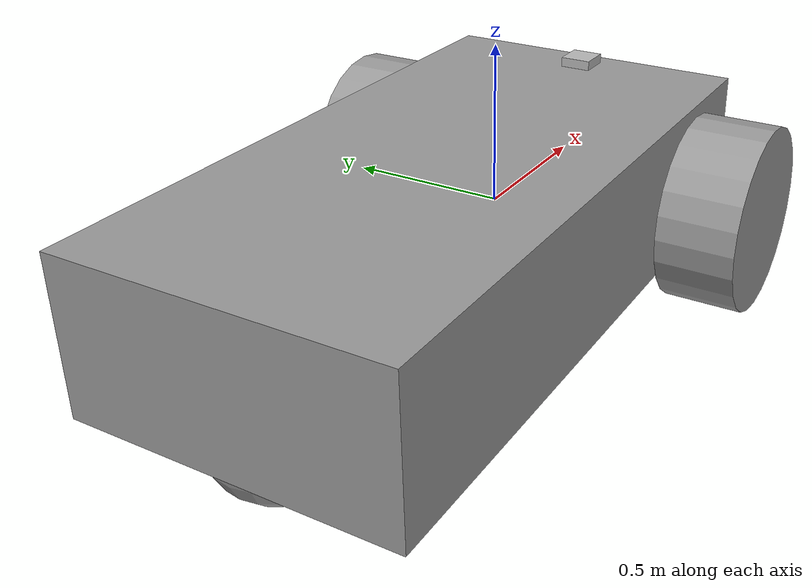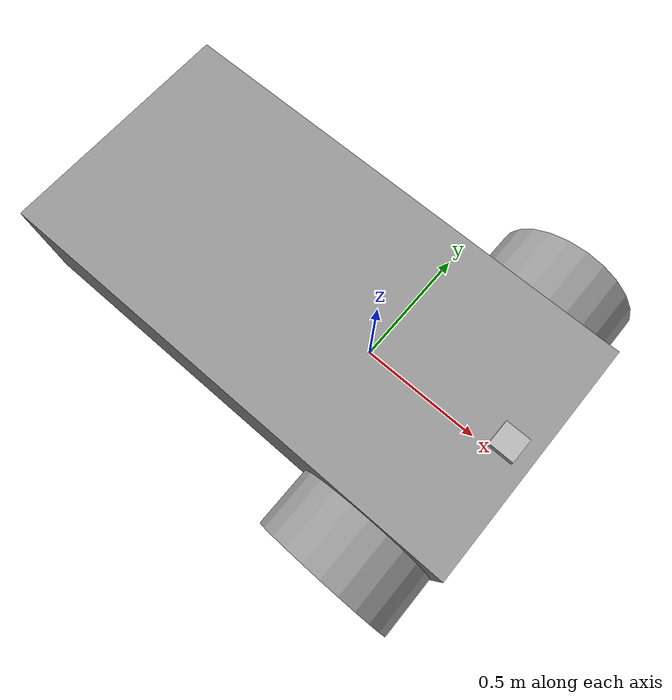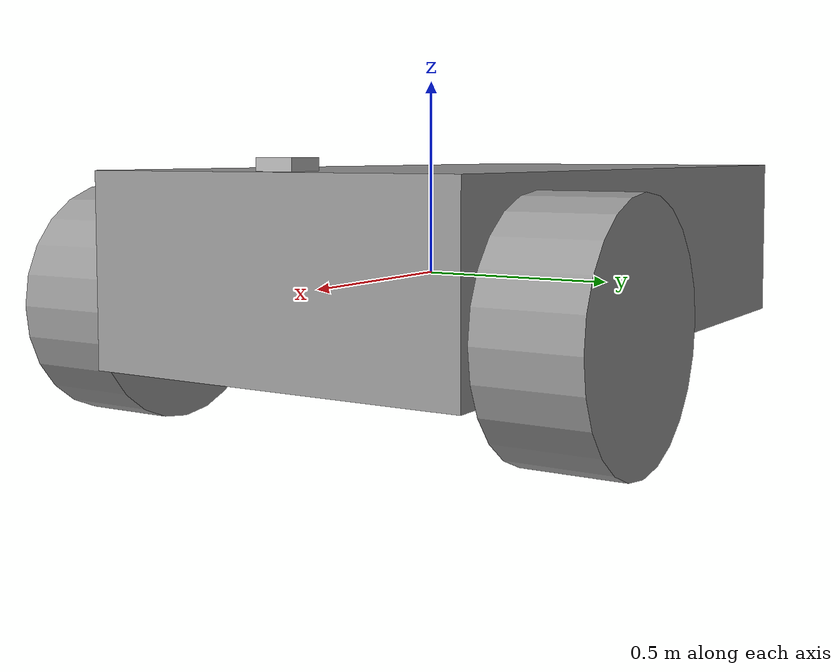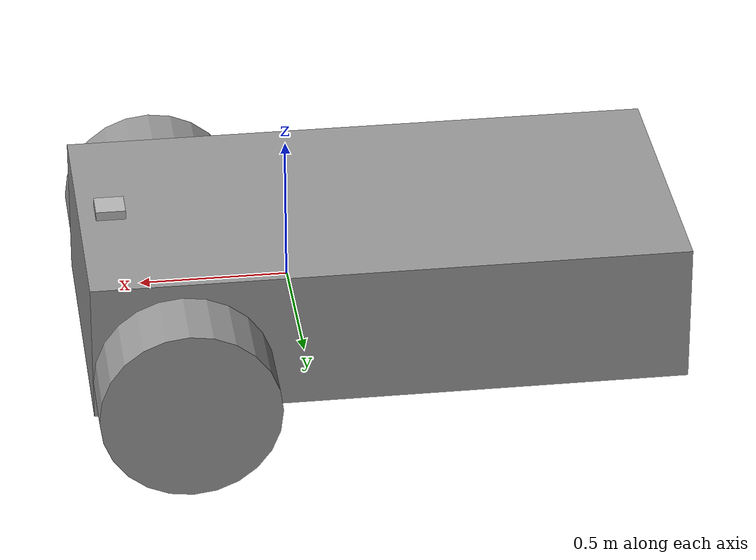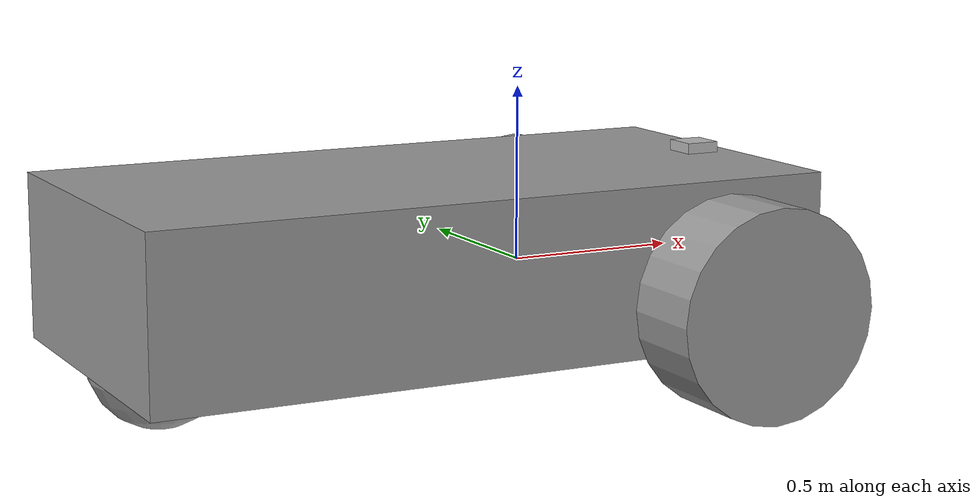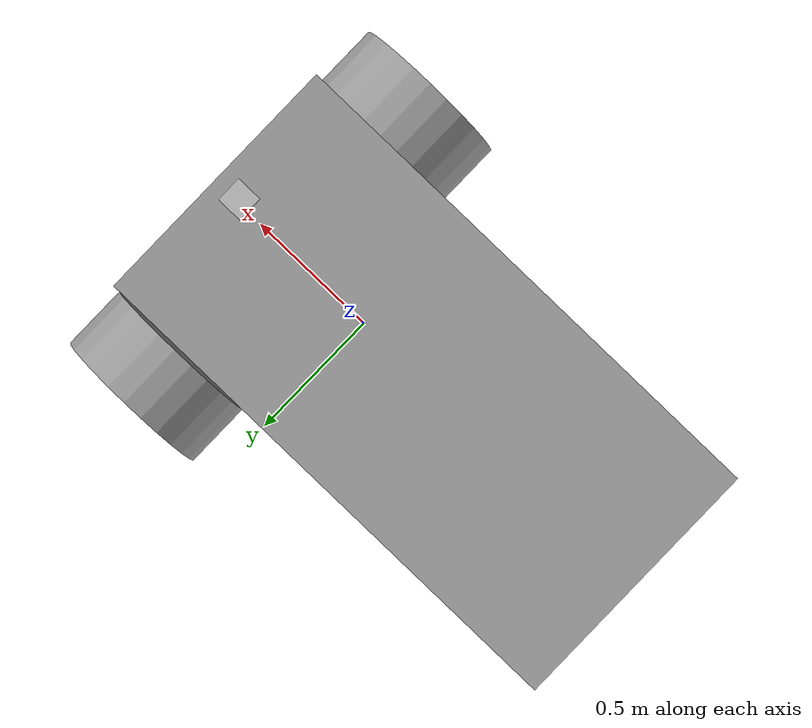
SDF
<?xml version='1.0'?>
<sdf version='1.6'>
  <model name='Assignement_2_Solution'>
    <link name='link_0'>
      <inertial>
        <mass>0.950561</mass>
        <inertia>
          <ixx>0.0972539</ixx>
          <ixy>0</ixy>
          <ixz>0</ixz>
          <iyy>0.332322</iyy>
          <iyz>0</iyz>
          <izz>0.393495</izz>
        </inertia>
        <pose frame=''>0 0 0 0 -0 0</pose>
      </inertial>
      <pose frame=''>-0.296974 -0.00093 0.03602 0 -0 0</pose>
      <gravity>1</gravity>
      <self_collide>0</self_collide>
      <kinematic>0</kinematic>
      <enable_wind>0</enable_wind>
      <visual name='visual'>
        <pose frame=''>0 0 0 0 -0 0</pose>
        <geometry>
          <box>
            <size>1.99187 1 0.477226</size>
          </box>
        </geometry>
        <material>
          <lighting>1</lighting>
          <script>
            <uri>file://media/materials/scripts/gazebo.material</uri>
            <name>Gazebo/Grey</name>
          </script>
          <shader type='vertex'>
            <normal_map>__default__</normal_map>
          </shader>
          <ambient>0.3 0.3 0.3 1</ambient>
          <diffuse>0.7 0.7 0.7 1</diffuse>
          <specular>0.01 0.01 0.01 1</specular>
          <emissive>0 0 0 1</emissive>
        </material>
        <transparency>0</transparency>
        <cast_shadows>1</cast_shadows>
      </visual>
      <collision name='collision'>
        <laser_retro>0</laser_retro>
        <max_contacts>10</max_contacts>
        <pose frame=''>0 0 0 0 -0 0</pose>
        <geometry>
          <box>
            <size>1.99187 1 0.477226</size>
          </box>
        </geometry>
        <surface>
          <friction>
            <ode>
              <mu>1</mu>
              <mu2>1</mu2>
              <fdir1>0 0 0</fdir1>
              <slip1>0</slip1>
              <slip2>0</slip2>
            </ode>
            <torsional>
              <coefficient>1</coefficient>
              <patch_radius>0</patch_radius>
              <surface_radius>0</surface_radius>
              <use_patch_radius>1</use_patch_radius>
              <ode>
                <slip>0</slip>
              </ode>
            </torsional>
          </friction>
          <bounce>
            <restitution_coefficient>0</restitution_coefficient>
            <threshold>1e+06</threshold>
          </bounce>
          <contact>
            <collide_without_contact>0</collide_without_contact>
            <collide_without_contact_bitmask>1</collide_without_contact_bitmask>
            <collide_bitmask>1</collide_bitmask>
            <ode>
              <soft_cfm>0</soft_cfm>
              <soft_erp>0.2</soft_erp>
              <kp>1e+13</kp>
              <kd>1</kd>
              <max_vel>0.01</max_vel>
              <min_depth>0</min_depth>
            </ode>
            <bullet>
              <split_impulse>1</split_impulse>
              <split_impulse_penetration_threshold>-0.01</split_impulse_penetration_threshold>
              <soft_cfm>0</soft_cfm>
              <soft_erp>0.2</soft_erp>
              <kp>1e+13</kp>
              <kd>1</kd>
            </bullet>
          </contact>
        </surface>
      </collision>
    </link>
    <link name='link_3'>
      <inertial>
        <mass>1</mass>
        <inertia>
          <ixx>0.145833</ixx>
          <ixy>0</ixy>
          <ixz>0</ixz>
          <iyy>0.145833</iyy>
          <iyz>0</iyz>
          <izz>0.125</izz>
        </inertia>
        <pose frame=''>0 0 0 0 -0 0</pose>
      </inertial>
      <pose frame=''>0.398957 0.6391 -0.06398 1.5707 -0 0</pose>
      <gravity>1</gravity>
      <self_collide>0</self_collide>
      <kinematic>0</kinematic>
      <enable_wind>0</enable_wind>
      <visual name='visual'>
        <pose frame=''>0 0 0 0 -0 0</pose>
        <geometry>
          <cylinder>
            <radius>0.3</radius>
            <length>0.25</length>
          </cylinder>
        </geometry>
        <material>
          <lighting>1</lighting>
          <script>
            <uri>file://media/materials/scripts/gazebo.material</uri>
            <name>Gazebo/Grey</name>
          </script>
          <shader type='vertex'>
            <normal_map>__default__</normal_map>
          </shader>
          <ambient>0.3 0.3 0.3 1</ambient>
          <diffuse>0.7 0.7 0.7 1</diffuse>
          <specular>0.01 0.01 0.01 1</specular>
          <emissive>0 0 0 1</emissive>
        </material>
        <transparency>0</transparency>
        <cast_shadows>1</cast_shadows>
      </visual>
      <collision name='collision'>
        <laser_retro>0</laser_retro>
        <max_contacts>10</max_contacts>
        <pose frame=''>0 0 0 0 -0 0</pose>
        <geometry>
          <cylinder>
            <radius>0.3</radius>
            <length>0.25</length>
          </cylinder>
        </geometry>
        <surface>
          <friction>
            <ode>
              <mu>1</mu>
              <mu2>1</mu2>
              <fdir1>0 0 0</fdir1>
              <slip1>0</slip1>
              <slip2>0</slip2>
            </ode>
            <torsional>
              <coefficient>1</coefficient>
              <patch_radius>0</patch_radius>
              <surface_radius>0</surface_radius>
              <use_patch_radius>1</use_patch_radius>
              <ode>
                <slip>0</slip>
              </ode>
            </torsional>
          </friction>
          <bounce>
            <restitution_coefficient>0</restitution_coefficient>
            <threshold>1e+06</threshold>
          </bounce>
          <contact>
            <collide_without_contact>0</collide_without_contact>
            <collide_without_contact_bitmask>1</collide_without_contact_bitmask>
            <collide_bitmask>1</collide_bitmask>
            <ode>
              <soft_cfm>0</soft_cfm>
              <soft_erp>0.2</soft_erp>
              <kp>1e+13</kp>
              <kd>1</kd>
              <max_vel>0.01</max_vel>
              <min_depth>0</min_depth>
            </ode>
            <bullet>
              <split_impulse>1</split_impulse>
              <split_impulse_penetration_threshold>-0.01</split_impulse_penetration_threshold>
              <soft_cfm>0</soft_cfm>
              <soft_erp>0.2</soft_erp>
              <kp>1e+13</kp>
              <kd>1</kd>
            </bullet>
          </contact>
        </surface>
      </collision>
    </link>
    <link name='link_3_clone'>
      <inertial>
        <mass>1</mass>
        <inertia>
          <ixx>0.145833</ixx>
          <ixy>0</ixy>
          <ixz>0</ixz>
          <iyy>0.145833</iyy>
          <iyz>0</iyz>
          <izz>0.125</izz>
        </inertia>
        <pose frame=''>0 0 0 0 -0 0</pose>
      </inertial>
      <pose frame=''>0.398957 -0.62596 -0.06398 1.5707 -0 0</pose>
      <gravity>1</gravity>
      <self_collide>0</self_collide>
      <kinematic>0</kinematic>
      <enable_wind>0</enable_wind>
      <visual name='visual'>
        <pose frame=''>0 0 0 0 -0 0</pose>
        <geometry>
          <cylinder>
            <radius>0.3</radius>
            <length>0.25</length>
          </cylinder>
        </geometry>
        <material>
          <lighting>1</lighting>
          <script>
            <uri>file://media/materials/scripts/gazebo.material</uri>
            <name>Gazebo/Grey</name>
          </script>
          <shader type='vertex'>
            <normal_map>__default__</normal_map>
          </shader>
          <ambient>0.3 0.3 0.3 1</ambient>
          <diffuse>0.7 0.7 0.7 1</diffuse>
          <specular>0.01 0.01 0.01 1</specular>
          <emissive>0 0 0 1</emissive>
        </material>
        <transparency>0</transparency>
        <cast_shadows>1</cast_shadows>
      </visual>
      <collision name='collision'>
        <laser_retro>0</laser_retro>
        <max_contacts>10</max_contacts>
        <pose frame=''>0 0 0 0 -0 0</pose>
        <geometry>
          <cylinder>
            <radius>0.3</radius>
            <length>0.25</length>
          </cylinder>
        </geometry>
        <surface>
          <friction>
            <ode>
              <mu>1</mu>
              <mu2>1</mu2>
              <fdir1>0 0 0</fdir1>
              <slip1>0</slip1>
              <slip2>0</slip2>
            </ode>
            <torsional>
              <coefficient>1</coefficient>
              <patch_radius>0</patch_radius>
              <surface_radius>0</surface_radius>
              <use_patch_radius>1</use_patch_radius>
              <ode>
                <slip>0</slip>
              </ode>
            </torsional>
          </friction>
          <bounce>
            <restitution_coefficient>0</restitution_coefficient>
            <threshold>1e+06</threshold>
          </bounce>
          <contact>
            <collide_without_contact>0</collide_without_contact>
            <collide_without_contact_bitmask>1</collide_without_contact_bitmask>
            <collide_bitmask>1</collide_bitmask>
            <ode>
              <soft_cfm>0</soft_cfm>
              <soft_erp>0.2</soft_erp>
              <kp>1e+13</kp>
              <kd>1</kd>
              <max_vel>0.01</max_vel>
              <min_depth>0</min_depth>
            </ode>
            <bullet>
              <split_impulse>1</split_impulse>
              <split_impulse_penetration_threshold>-0.01</split_impulse_penetration_threshold>
              <soft_cfm>0</soft_cfm>
              <soft_erp>0.2</soft_erp>
              <kp>1e+13</kp>
              <kd>1</kd>
            </bullet>
          </contact>
        </surface>
      </collision>
    </link>
    <link name='link_4'>
      <inertial>
        <mass>1</mass>
        <inertia>
          <ixx>0.1</ixx>
          <ixy>0</ixy>
          <ixz>0</ixz>
          <iyy>0.1</iyy>
          <iyz>0</iyz>
          <izz>0.1</izz>
        </inertia>
        <pose frame=''>0 0 0 0 -0 0</pose>
      </inertial>
      <pose frame=''>-1.09291 -0.00093 -0.16398 0 -0 0</pose>
      <gravity>1</gravity>
      <self_collide>0</self_collide>
      <kinematic>0</kinematic>
      <enable_wind>0</enable_wind>
      <visual name='visual'>
        <pose frame=''>0 0 0 0 -0 0</pose>
        <geometry>
          <sphere>
            <radius>0.2</radius>
          </sphere>
        </geometry>
        <material>
          <lighting>1</lighting>
          <script>
            <uri>file://media/materials/scripts/gazebo.material</uri>
            <name>Gazebo/Grey</name>
          </script>
          <shader type='vertex'>
            <normal_map>__default__</normal_map>
          </shader>
          <ambient>0.3 0.3 0.3 1</ambient>
          <diffuse>0.7 0.7 0.7 1</diffuse>
          <specular>0.01 0.01 0.01 1</specular>
          <emissive>0 0 0 1</emissive>
        </material>
        <transparency>0</transparency>
        <cast_shadows>1</cast_shadows>
      </visual>
      <collision name='collision'>
        <laser_retro>0</laser_retro>
        <max_contacts>10</max_contacts>
        <pose frame=''>0 0 0 0 -0 0</pose>
        <geometry>
          <sphere>
            <radius>0.2</radius>
          </sphere>
        </geometry>
        <surface>
          <friction>
            <ode>
              <mu>1</mu>
              <mu2>1</mu2>
              <fdir1>0 0 0</fdir1>
              <slip1>0</slip1>
              <slip2>0</slip2>
            </ode>
            <torsional>
              <coefficient>1</coefficient>
              <patch_radius>0</patch_radius>
              <surface_radius>0</surface_radius>
              <use_patch_radius>1</use_patch_radius>
              <ode>
                <slip>0</slip>
              </ode>
            </torsional>
          </friction>
          <bounce>
            <restitution_coefficient>0</restitution_coefficient>
            <threshold>1e+06</threshold>
          </bounce>
          <contact>
            <collide_without_contact>0</collide_without_contact>
            <collide_without_contact_bitmask>1</collide_without_contact_bitmask>
            <collide_bitmask>1</collide_bitmask>
            <ode>
              <soft_cfm>0</soft_cfm>
              <soft_erp>0.2</soft_erp>
              <kp>1e+13</kp>
              <kd>1</kd>
              <max_vel>0.01</max_vel>
              <min_depth>0</min_depth>
            </ode>
            <bullet>
              <split_impulse>1</split_impulse>
              <split_impulse_penetration_threshold>-0.01</split_impulse_penetration_threshold>
              <soft_cfm>0</soft_cfm>
              <soft_erp>0.2</soft_erp>
              <kp>1e+13</kp>
              <kd>1</kd>
            </bullet>
          </contact>
        </surface>
      </collision>
    </link>
    <model name='camera'>
      <pose frame=''>0.591967 -0.01128 0.255921 0 -0 0</pose>
      <link name='link'>
        <inertial>
          <mass>0.1</mass>
          <inertia>
            <ixx>0.000166667</ixx>
            <iyy>0.000166667</iyy>
            <izz>0.000166667</izz>
            <ixy>0</ixy>
            <ixz>0</ixz>
            <iyz>0</iyz>
          </inertia>
        </inertial>
        <collision name='collision'>
          <geometry>
            <box>
              <size>0.1 0.1 0.1</size>
            </box>
          </geometry>
        </collision>
        <visual name='visual'>
          <geometry>
            <box>
              <size>0.1 0.1 0.1</size>
            </box>
          </geometry>
        </visual>
        <sensor name='camera' type='camera'>
          <camera name='__default__'>
            <horizontal_fov>1.047</horizontal_fov>
            <image>
              <width>320</width>
              <height>240</height>
            </image>
            <clip>
              <near>0.1</near>
              <far>100</far>
            </clip>
          </camera>
          <always_on>1</always_on>
          <update_rate>30</update_rate>
          <visualize>1</visualize>
        </sensor>
      </link>
    </model>
    <joint name='link_0_JOINT_0' type='revolute'>
      <parent>link_0</parent>
      <child>link_3</child>
      <pose frame=''>-0.01 0 0 0 -0 0</pose>
      <axis>
        <xyz>0 0 1</xyz>
        <use_parent_model_frame>0</use_parent_model_frame>
        <limit>
          <lower>-1.79769e+308</lower>
          <upper>1.79769e+308</upper>
          <effort>-1</effort>
          <velocity>-1</velocity>
        </limit>
        <dynamics>
          <spring_reference>0</spring_reference>
          <spring_stiffness>0</spring_stiffness>
          <damping>0</damping>
        </dynamics>
      </axis>
      <physics>
        <ode>
          <limit>
            <cfm>0</cfm>
            <erp>0.2</erp>
          </limit>
          <suspension>
            <cfm>0</cfm>
            <erp>0.2</erp>
          </suspension>
        </ode>
      </physics>
    </joint>
    <joint name='link_0_JOINT_2' type='revolute'>
      <parent>link_0</parent>
      <child>link_3_clone</child>
      <pose frame=''>0 0 0 0 -0 0</pose>
      <axis>
        <xyz>0 0 1</xyz>
        <use_parent_model_frame>0</use_parent_model_frame>
        <limit>
          <lower>-1.79769e+308</lower>
          <upper>1.79769e+308</upper>
          <effort>-1</effort>
          <velocity>-1</velocity>
        </limit>
        <dynamics>
          <spring_reference>0</spring_reference>
          <spring_stiffness>0</spring_stiffness>
          <damping>0</damping>
        </dynamics>
      </axis>
      <physics>
        <ode>
          <limit>
            <cfm>0</cfm>
            <erp>0.2</erp>
          </limit>
          <suspension>
            <cfm>0</cfm>
            <erp>0.2</erp>
          </suspension>
        </ode>
      </physics>
    </joint>
    <joint name='link_0_JOINT_3' type='ball'>
      <parent>link_0</parent>
      <child>link_4</child>
      <pose frame=''>0 0 0 0 -0 0</pose>
      <physics>
        <ode>
          <limit>
            <cfm>0</cfm>
            <erp>0.2</erp>
          </limit>
          <suspension>
            <cfm>0</cfm>
            <erp>0.2</erp>
          </suspension>
        </ode>
      </physics>
    </joint>
    <joint name='link_0_JOINT_4' type='fixed'>
      <parent>link_0</parent>
      <child>camera::link</child>
      <pose frame=''>0 0 0 0 -0 0</pose>
      <physics>
        <ode>
          <limit>
            <cfm>0</cfm>
            <erp>0.2</erp>
          </limit>
          <suspension>
            <cfm>0</cfm>
            <erp>0.2</erp>
          </suspension>
        </ode>
      </physics>
    </joint>
    <static>0</static>
    <allow_auto_disable>1</allow_auto_disable>
    <plugin name='follower' filename='libFollowerPlugin.so'/>
  </model>
</sdf>
